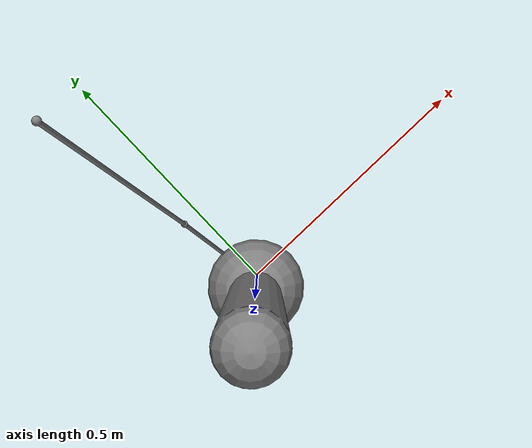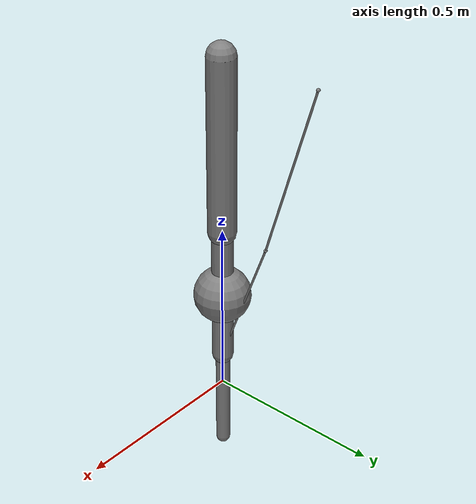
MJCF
<mujoco>
  <worldbody>
    <body name="b1" pos="0 0 1">
      <joint name="j1" type="hinge" axis="0 1 0"/>
      <geom type="capsule" size="0.04" fromto="0 0 0 0 0 -0.5"/>
      <site name="s1" pos="0 0.3 0"/>
      <body name="b2" pos="0 0 -0.5">
        <joint name="j2" type="hinge" axis="0 1 0"/>
        <geom type="capsule" size="0.03" fromto="0 0 0 0 0 -0.4"/>
        <site name="s2" pos="0 0.15 0"/>
        <body name="wrap_body" pos="0 0 -0.2">
          <geom name="wrap_sphere" type="sphere" size="0.08"/>
        </body>
        <body name="b3" pos="0 0 -0.4">
          <joint name="j3" type="hinge" axis="0 1 0"/>
          <geom type="capsule" size="0.02" fromto="0 0 0 0 0 -0.3"/>
          <site name="s3" pos="0 0 0"/>
        </body>
      </body>
    </body>
  </worldbody>
  <tendon>
    <spatial name="t_mixed" stiffness="100">
      <site site="s1"/>
      <site site="s2"/>
      <geom geom="wrap_sphere"/>
      <site site="s3"/>
    </spatial>
  </tendon>
</mujoco>
